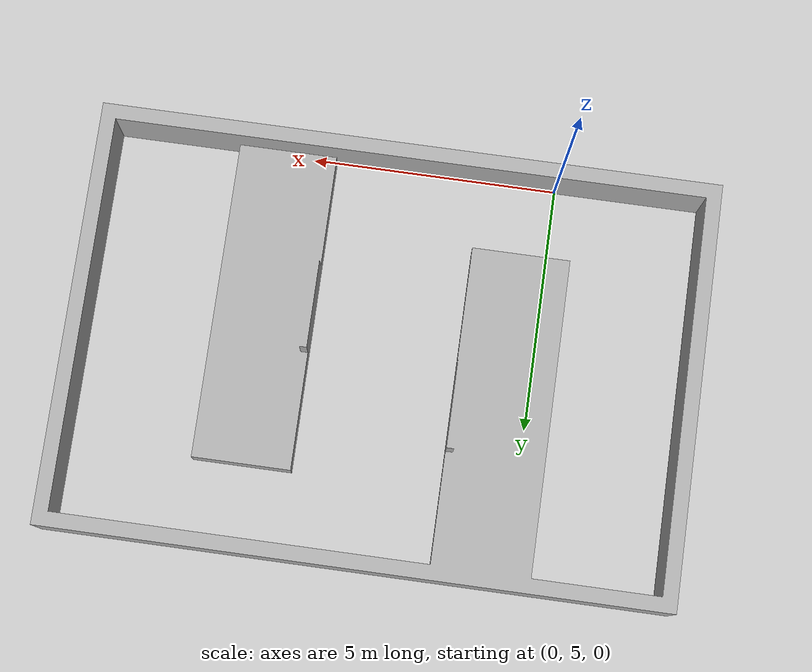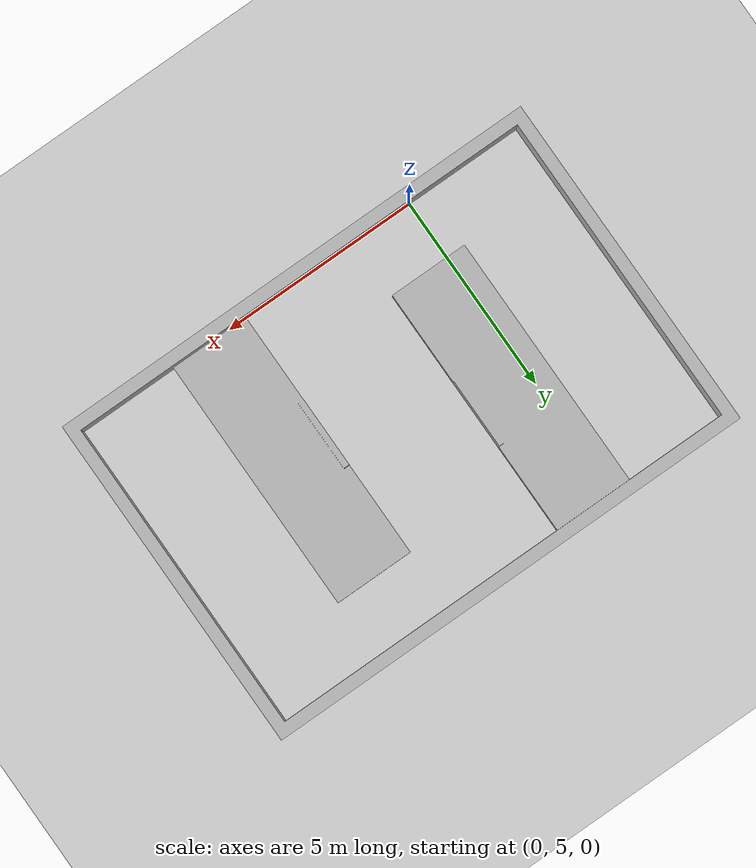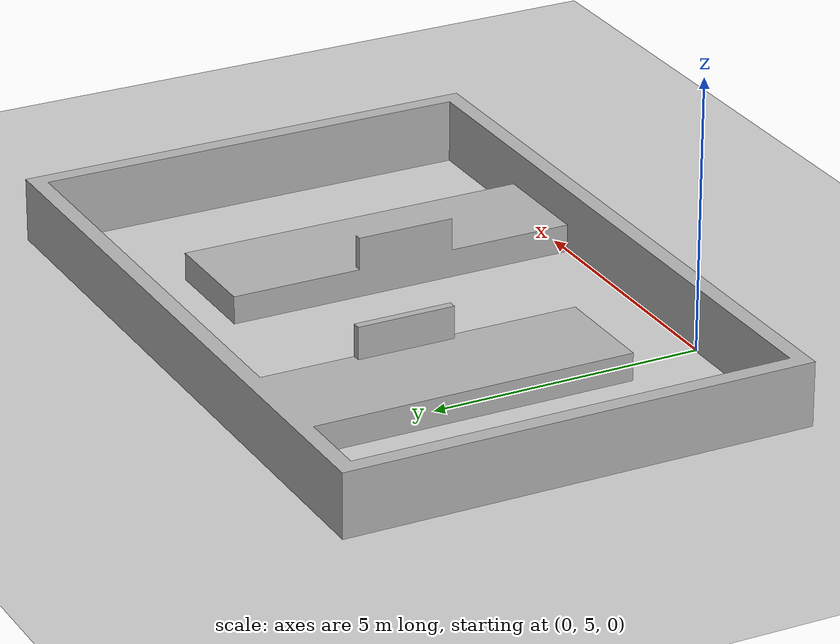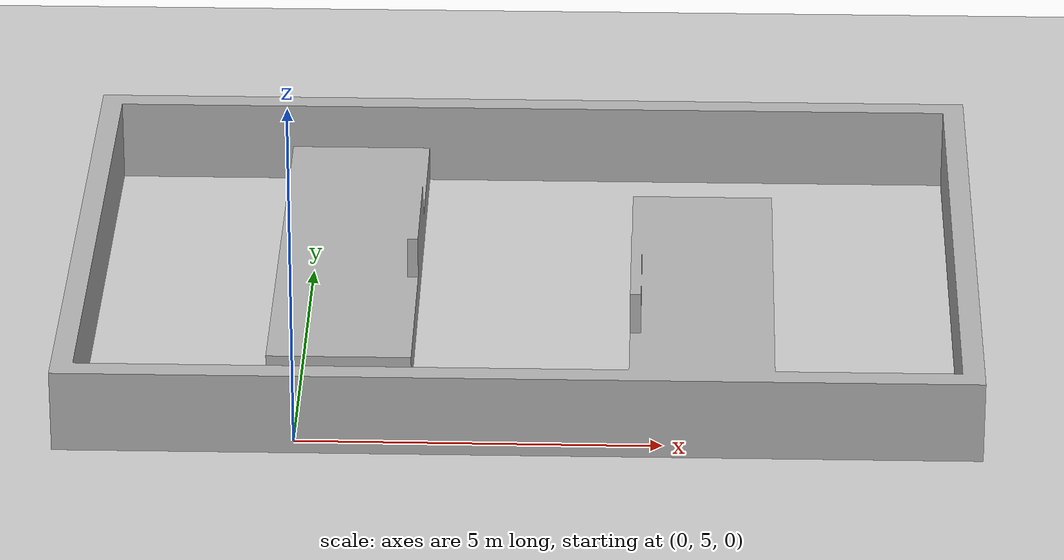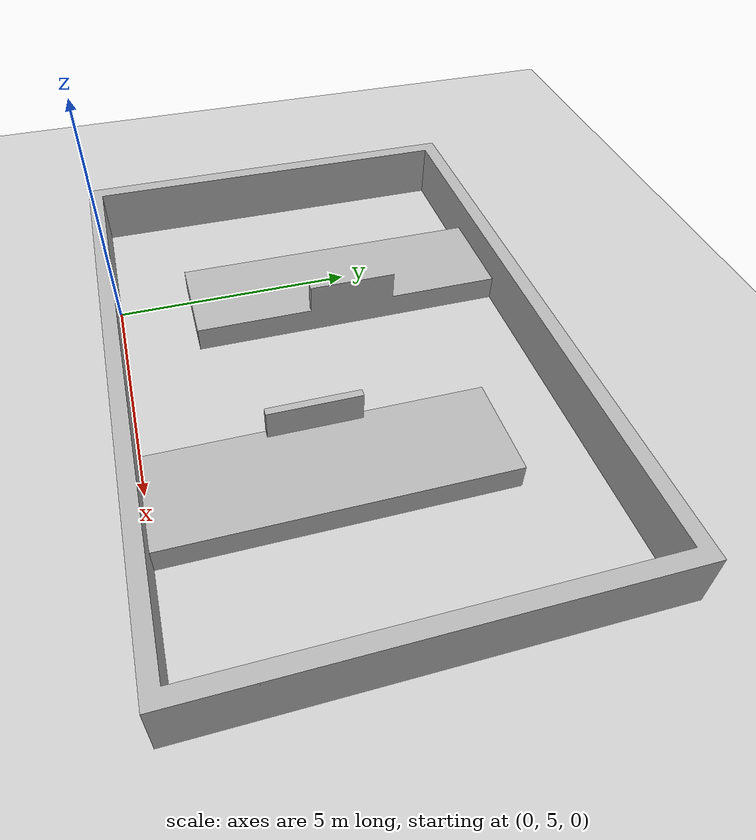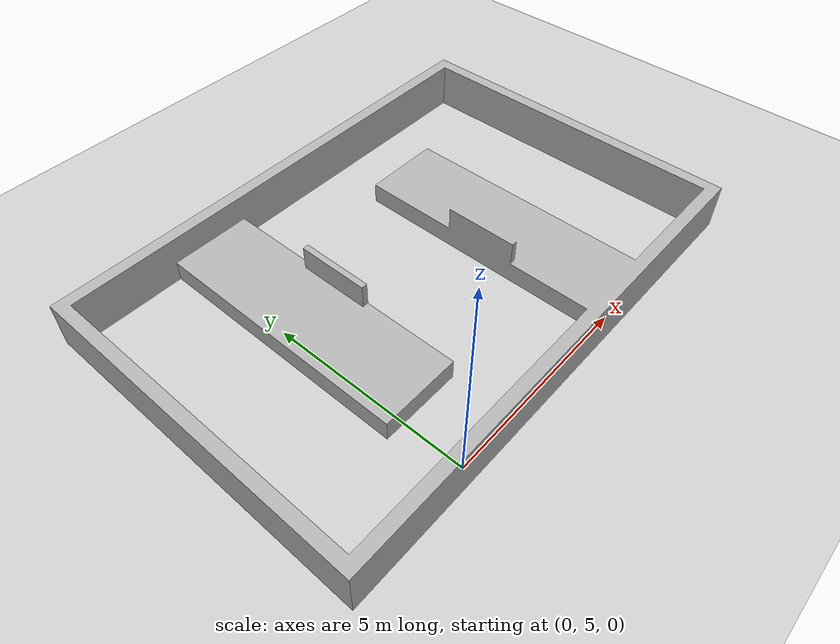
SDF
<sdf version="1.9">
 <world name="default">
  <gravity>0 0 -100</gravity>
  <magnetic_field>6e-06 2.3e-05 -4.2e-05</magnetic_field>
  <atmosphere type="adiabatic"/>
  <physics type="ode">
   <max_step_size>0.001</max_step_size>
   <real_time_factor>1</real_time_factor>
   <real_time_update_rate>0</real_time_update_rate>
  </physics>
  <scene><ambient>0.4 0.4 0.4 1</ambient><background>0.7 0.7 0.7 1</background><shadows>true</shadows></scene>
  <spherical_coordinates>
   <surface_model>EARTH_WGS84</surface_model>
   <latitude_deg>0</latitude_deg>
   <longitude_deg>0</longitude_deg>
   <elevation>0</elevation>
   <heading_deg>0</heading_deg>
  </spherical_coordinates>
  <model name="ground_plane">
   <static>true</static>
   <link name="link">
    <collision name="collision">
     <geometry><plane><normal>0 0 1</normal><size>100 100</size></plane></geometry>
     <surface>
      <contact><collide_bitmask>65535</collide_bitmask></contact>
      <friction><ode><mu>0.1</mu><mu2>0.1</mu2></ode></friction>
     </surface>
    </collision>
    <visual name="visual">
     <cast_shadows>false</cast_shadows>
     <geometry><plane><normal>0 0 1</normal><size>100 100</size></plane></geometry>
     <material>
      <script><uri>file://media/materials/scripts/gazebo.material</uri><name>Gazebo/Grey</name></script>
     </material>
    </visual>
    <inertial>
     <mass>1</mass>
     <inertia><ixx>1</ixx><ixy>0</ixy><ixz>0</ixz><iyy>1</iyy><iyz>0</iyz><izz>1</izz></inertia>
    </inertial>
   </link>
  </model>
  <model name="rmus_map_2">
   <link name="link_0">
    <inertial>
     <mass>1</mass>
     <inertia>
      <ixx>0.16666700000000001</ixx>
      <ixy>0</ixy>
      <ixz>0</ixz>
      <iyy>0.16666700000000001</iyy>
      <iyz>0</iyz>
      <izz>0.16666700000000001</izz>
     </inertia>
    </inertial>
    <pose>3 9 -0.1 -1.5708 0 0</pose>
    <visual name="visual">
     <geometry>
      <mesh>
       <uri>/home/dinvsh/sentry_sim/sentry_gazebo/meshes/RMUL2026.stl</uri>
       <scale>0.001 0.003 0.001</scale>
      </mesh>
     </geometry>
     <material><diffuse>0.7 0.7 0.7 1</diffuse></material>
    </visual>
    <collision name="collision">
     <geometry>
      <mesh>
       <uri>/home/dinvsh/sentry_sim/sentry_gazebo/meshes/RMUL2026.stl</uri>
       <scale>0.001 0.003 0.001</scale>
      </mesh>
     </geometry>
     <surface>
      <contact><ode><kp>1000000.0</kp><kd>1.0</kd><min_depth>0.005</min_depth></ode></contact>
      <friction><ode><mu>0.5</mu><mu2>0.5</mu2></ode></friction>
     </surface>
    </collision>
   </link>
   <static>true</static>
   <pose>0.030715 0.004529 0 0 -0 0</pose>
  </model>
  <light name="sun" type="directional">
   <pose>0 0 10 0 -0 0</pose>
   <intensity>1</intensity>
   <direction>-0.5 0.1 -0.9</direction>
   <diffuse>0.8 0.8 0.8 1</diffuse>
   <specular>0.2 0.2 0.2 1</specular>
   <attenuation>
    <range>1000</range>
    <linear>0.01</linear>
    <constant>0.90000000000000002</constant>
    <quadratic>0.001</quadratic>
   </attenuation>
   <spot><inner_angle>0</inner_angle><outer_angle>0</outer_angle><falloff>0</falloff></spot>
  </light>
 </world>
</sdf>
